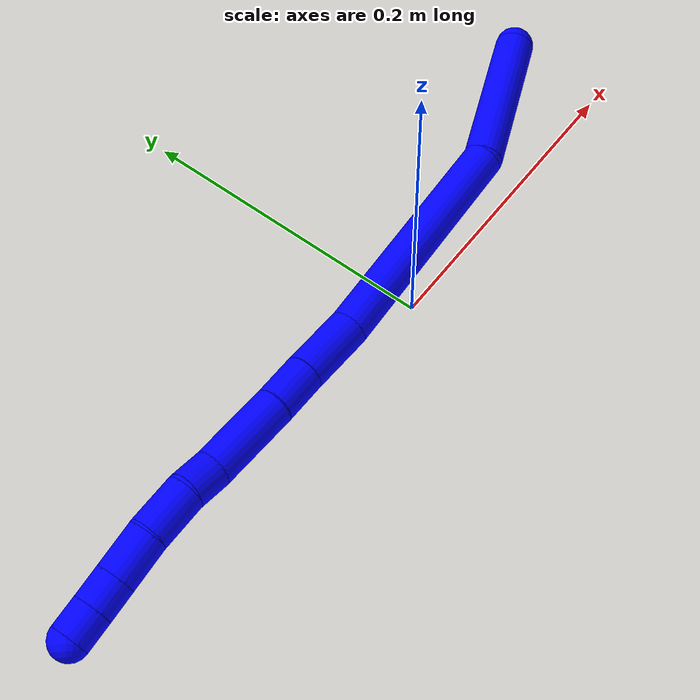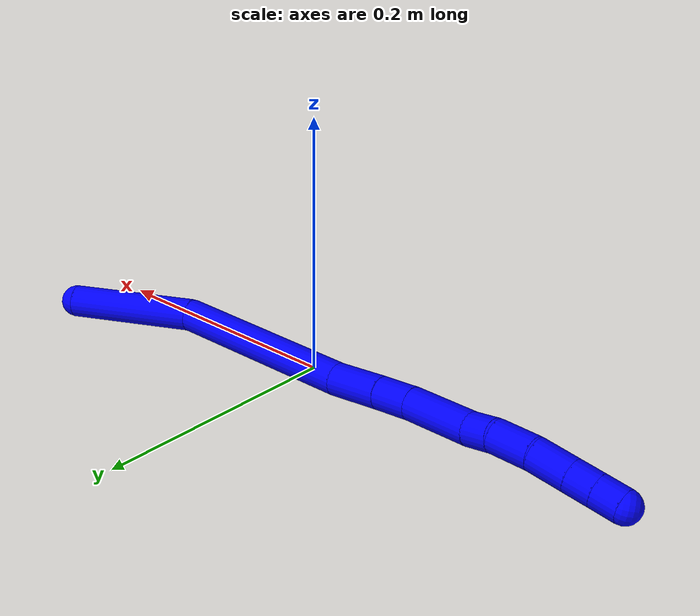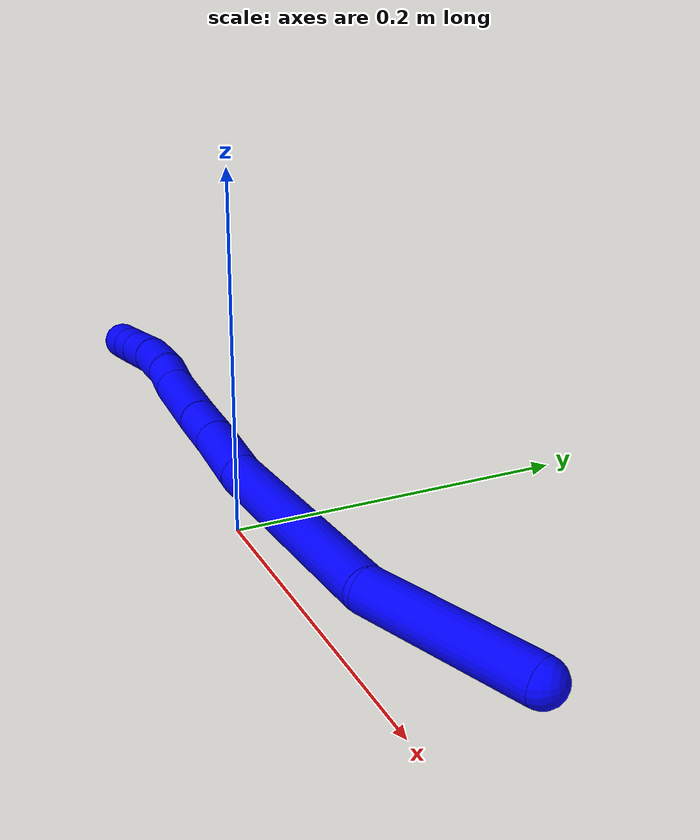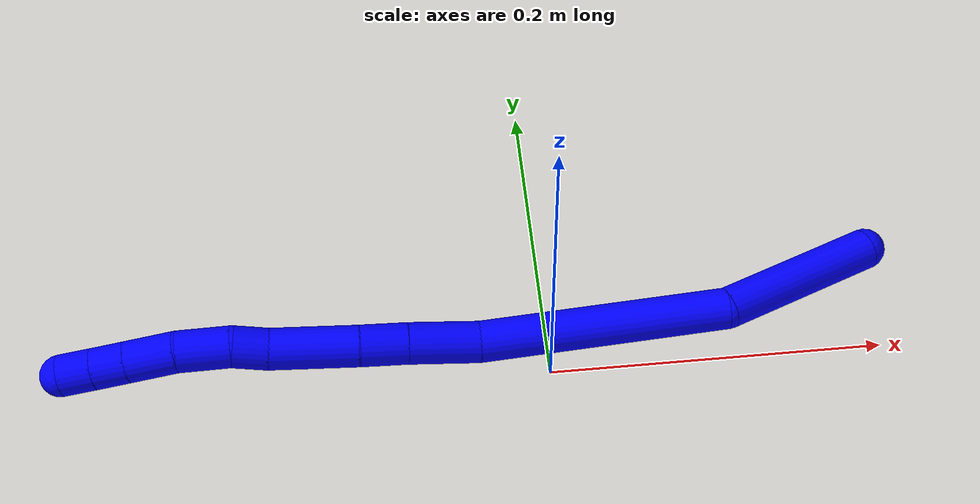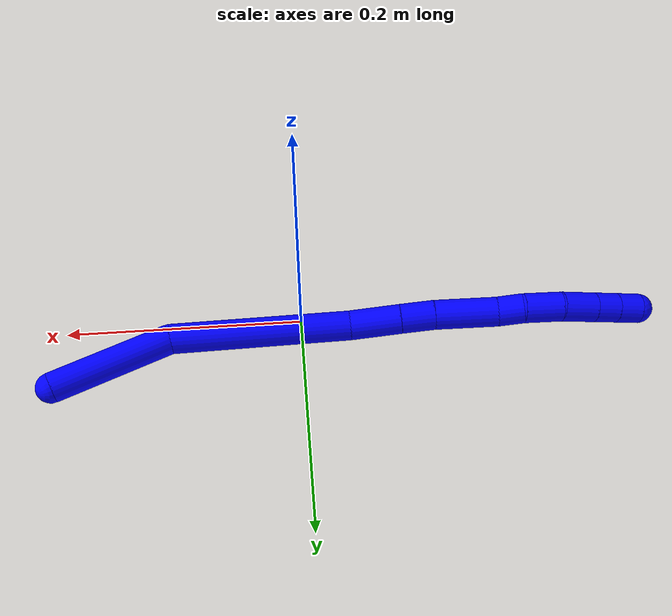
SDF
<sdf version="1.7">
 <world name="default">
  <plugin name="TubeGeneratorPlugin" filename="libtube_generator_plugin.so"/>
  <model name="photoneo_s_sensor">
   <static>1</static>
   <pose>0 0 2 1.57079 1.57079 3.14159</pose>
   <link name="link">
    <inertial><mass>0.1</mass></inertial>
    <sensor name="sensor" type="depth">
     <update_rate>30</update_rate>
     <camera>
      <horizontal_fov>1.22</horizontal_fov>
      <image><width>1920</width><height>1200</height><format>B8G8R8</format></image>
      <clip><near>0.1</near><far>4</far></clip>
      <depth_camera><output>points</output></depth_camera>
     </camera>
     <plugin name="camera_plugin" filename="libgazebo_ros_depth_camera.so">
      <baseline>0.2</baseline>
      <alwaysOn>1</alwaysOn>
      <updateRate>0.0</updateRate>
      <cameraName>camera_ir</cameraName>
      <imageTopicName>/camera/color/image_raw</imageTopicName>
      <cameraInfoTopicName>/camera/color/camera_info</cameraInfoTopicName>
      <depthImageTopicName>/camera/depth/image_raw</depthImageTopicName>
      <depthImageCameraInfoTopicName>/camera/depth/camera_info</depthImageCameraInfoTopicName>
      <pointCloudTopicName>/camera/depth/points</pointCloudTopicName>
      <frameName>fr_optical</frameName>
      <pointCloudCutoff>0.1</pointCloudCutoff>
      <pointCloudCutoffMax>2.0</pointCloudCutoffMax>
      <distortionK1>0</distortionK1>
      <distortionK2>0</distortionK2>
      <distortionK3>0</distortionK3>
      <distortionT1>0</distortionT1>
      <distortionT2>0</distortionT2>
      <CxPrime>0</CxPrime>
      <Cx>0</Cx>
      <Cy>0</Cy>
      <focalLength>0</focalLength>
      <hackBaseline>0</hackBaseline>
     </plugin>
    </sensor>
   </link>
  </model>
  <gravity>0 0 -9.8</gravity>
  <magnetic_field>6e-06 2.3e-05 -4.2e-05</magnetic_field>
  <atmosphere type="adiabatic"/>
  <physics name="default_physics" default="0" type="ode">
   <max_step_size>0.003</max_step_size>
   <real_time_factor>1</real_time_factor>
   <real_time_update_rate>1000</real_time_update_rate>
   <max_contacts>10000</max_contacts>
   <ode>
    <solver>
     <type>quick</type>
     <iters>100</iters>
     <sor>1.3</sor>
     <use_dynamic_moi_rescaling>0</use_dynamic_moi_rescaling>
    </solver>
    <constraints>
     <contact_max_correcting_vel>0</contact_max_correcting_vel>
     <contact_surface_layer>0.001</contact_surface_layer>
     <cfm>0</cfm>
     <erp>0.2</erp>
    </constraints>
   </ode>
  </physics>
  <scene><ambient>0.4 0.4 0.4 1</ambient><background>0.7 0.7 0.7 1</background><shadows>0</shadows></scene>
  <audio><device>default</device></audio>
  <spherical_coordinates>
   <surface_model>EARTH_WGS84</surface_model>
   <latitude_deg>0</latitude_deg>
   <longitude_deg>0</longitude_deg>
   <elevation>0</elevation>
   <heading_deg>0</heading_deg>
  </spherical_coordinates>
  <model name="bin">
   <static>1</static>
   <link name="bottom">
    <collision name="collision-bottom">
     <pose>0 0 -0.01 0 -0 0</pose>
     <geometry><box><size>0.8 0.6 0.02</size></box></geometry>
     <surface>
      <friction><ode><mu>100</mu><mu2>100</mu2></ode></friction>
      <contact><collide_bitmask>65535</collide_bitmask></contact>
     </surface>
    </collision>
   </link>
   <link name="west_wall">
    <collision name="collision-west_wall">
     <pose>-0.41 0 0.1 0 -0 0</pose>
     <geometry><box><size>0.02 0.6 0.2</size></box></geometry>
     <surface>
      <friction><ode><mu>100</mu><mu2>100</mu2></ode></friction>
      <contact><collide_bitmask>65535</collide_bitmask></contact>
     </surface>
    </collision>
   </link>
   <link name="east_wall">
    <collision name="collision-east_wall">
     <pose>0.41 0 0.1 0 -0 0</pose>
     <geometry><box><size>0.02 0.6 0.2</size></box></geometry>
     <surface>
      <friction><ode><mu>100</mu><mu2>100</mu2></ode></friction>
      <contact><collide_bitmask>65535</collide_bitmask></contact>
     </surface>
    </collision>
   </link>
   <link name="south_wall">
    <collision name="collision-south_wall">
     <pose>0 -0.31 0.1 0 -0 0</pose>
     <geometry><box><size>0.8 0.02 0.2</size></box></geometry>
     <surface>
      <friction><ode><mu>100</mu><mu2>100</mu2></ode></friction>
      <contact><collide_bitmask>65535</collide_bitmask></contact>
     </surface>
    </collision>
   </link>
   <link name="north_wall">
    <collision name="collision-north_wall">
     <pose>0 0.31 0.1 0 -0 0</pose>
     <geometry><box><size>0.8 0.02 0.2</size></box></geometry>
     <surface>
      <friction><ode><mu>100</mu><mu2>100</mu2></ode></friction>
      <contact><collide_bitmask>65535</collide_bitmask></contact>
     </surface>
    </collision>
   </link>
  </model>
  <model name="1">
   <static>0</static>
   <link name="1">
    <collision name="collision-cylinder-e_1_1_4">
     <pose>-0.017941 0.006266 0.046924 -0.132758 -0.362257 0.024347</pose>
     <geometry><cylinder><radius>0.0125</radius><length>0.101252</length></cylinder></geometry>
     <surface>
      <friction><ode><mu>1.16</mu><mu2>1.16</mu2><slip1>0</slip1><slip2>0</slip2></ode></friction>
      <contact><ode><kp>1e+06</kp><kd>1</kd><max_vel>0</max_vel><min_depth>0.001</min_depth></ode></contact>
     </surface>
    </collision>
    <visual name="visual-cylinder-e_1_1_4">
     <pose>-0.017941 0.006266 0.046924 -0.132758 -0.362257 0.024347</pose>
     <geometry><cylinder><radius>0.0125</radius><length>0.101252</length></cylinder></geometry>
     <material><ambient>0 0 1 1</ambient></material>
    </visual>
    <collision name="collision-cylinder-e_2_4_5">
     <pose>-0.081935 0.006479 0.152865 0.10221 -0.660094 -0.035042</pose>
     <geometry><cylinder><radius>0.0125</radius><length>0.150208</length></cylinder></geometry>
     <surface>
      <friction><ode><mu>1.16</mu><mu2>1.16</mu2><slip1>0</slip1><slip2>0</slip2></ode></friction>
      <contact><ode><kp>1e+06</kp><kd>1</kd><max_vel>0</max_vel><min_depth>0.001</min_depth></ode></contact>
     </surface>
    </collision>
    <visual name="visual-cylinder-e_2_4_5">
     <pose>-0.081935 0.006479 0.152865 0.10221 -0.660094 -0.035042</pose>
     <geometry><cylinder><radius>0.0125</radius><length>0.150208</length></cylinder></geometry>
     <material><ambient>0 0 1 1</ambient></material>
    </visual>
    <collision name="collision-cylinder-e_3_5_6">
     <pose>-0.142743 0.001025 0.227524 -0.038251 -0.755849 0.015187</pose>
     <geometry><cylinder><radius>0.0125</radius><length>0.043022</length></cylinder></geometry>
     <surface>
      <friction><ode><mu>1.16</mu><mu2>1.16</mu2><slip1>0</slip1><slip2>0</slip2></ode></friction>
      <contact><ode><kp>1e+06</kp><kd>1</kd><max_vel>0</max_vel><min_depth>0.001</min_depth></ode></contact>
     </surface>
    </collision>
    <visual name="visual-cylinder-e_3_5_6">
     <pose>-0.142743 0.001025 0.227524 -0.038251 -0.755849 0.015187</pose>
     <geometry><cylinder><radius>0.0125</radius><length>0.043022</length></cylinder></geometry>
     <material><ambient>0 0 1 1</ambient></material>
    </visual>
    <collision name="collision-cylinder-e_4_6_7">
     <pose>-0.166968 0.001667 0.253781 -0.004088 -0.728471 0.001559</pose>
     <geometry><cylinder><radius>0.0125</radius><length>0.028451</length></cylinder></geometry>
     <surface>
      <friction><ode><mu>1.16</mu><mu2>1.16</mu2><slip1>0</slip1><slip2>0</slip2></ode></friction>
      <contact><ode><kp>1e+06</kp><kd>1</kd><max_vel>0</max_vel><min_depth>0.001</min_depth></ode></contact>
     </surface>
    </collision>
    <visual name="visual-cylinder-e_4_6_7">
     <pose>-0.166968 0.001667 0.253781 -0.004088 -0.728471 0.001559</pose>
     <geometry><cylinder><radius>0.0125</radius><length>0.028451</length></cylinder></geometry>
     <material><ambient>0 0 1 1</ambient></material>
    </visual>
    <collision name="collision-cylinder-e_5_7_8">
     <pose>-0.194728 0.000179 0.283659 0.0793 -0.757919 -0.031592</pose>
     <geometry><cylinder><radius>0.0125</radius><length>0.053214</length></cylinder></geometry>
     <surface>
      <friction><ode><mu>1.16</mu><mu2>1.16</mu2><slip1>0</slip1><slip2>0</slip2></ode></friction>
      <contact><ode><kp>1e+06</kp><kd>1</kd><max_vel>0</max_vel><min_depth>0.001</min_depth></ode></contact>
     </surface>
    </collision>
    <visual name="visual-cylinder-e_5_7_8">
     <pose>-0.194728 0.000179 0.283659 0.0793 -0.757919 -0.031592</pose>
     <geometry><cylinder><radius>0.0125</radius><length>0.053214</length></cylinder></geometry>
     <material><ambient>0 0 1 1</ambient></material>
    </visual>
    <collision name="collision-cylinder-e_6_8_9">
     <pose>-0.221063 -0.000565 0.310183 -0.107881 -0.833634 0.047803</pose>
     <geometry><cylinder><radius>0.0125</radius><length>0.021731</length></cylinder></geometry>
     <surface>
      <friction><ode><mu>1.16</mu><mu2>1.16</mu2><slip1>0</slip1><slip2>0</slip2></ode></friction>
      <contact><ode><kp>1e+06</kp><kd>1</kd><max_vel>0</max_vel><min_depth>0.001</min_depth></ode></contact>
     </surface>
    </collision>
    <visual name="visual-cylinder-e_6_8_9">
     <pose>-0.221063 -0.000565 0.310183 -0.107881 -0.833634 0.047803</pose>
     <geometry><cylinder><radius>0.0125</radius><length>0.021731</length></cylinder></geometry>
     <material><ambient>0 0 1 1</ambient></material>
    </visual>
    <collision name="collision-cylinder-e_7_9_10">
     <pose>-0.239462 -0.001237 0.329615 0.119257 -0.701432 -0.043674</pose>
     <geometry><cylinder><radius>0.0125</radius><length>0.032092</length></cylinder></geometry>
     <surface>
      <friction><ode><mu>1.16</mu><mu2>1.16</mu2><slip1>0</slip1><slip2>0</slip2></ode></friction>
      <contact><ode><kp>1e+06</kp><kd>1</kd><max_vel>0</max_vel><min_depth>0.001</min_depth></ode></contact>
     </surface>
    </collision>
    <visual name="visual-cylinder-e_7_9_10">
     <pose>-0.239462 -0.001237 0.329615 0.119257 -0.701432 -0.043674</pose>
     <geometry><cylinder><radius>0.0125</radius><length>0.032092</length></cylinder></geometry>
     <material><ambient>0 0 1 1</ambient></material>
    </visual>
    <collision name="collision-cylinder-e_8_10_11">
     <pose>-0.258165 -0.005774 0.353578 0.25535 -0.600613 -0.079465</pose>
     <geometry><cylinder><radius>0.0125</radius><length>0.029545</length></cylinder></geometry>
     <surface>
      <friction><ode><mu>1.16</mu><mu2>1.16</mu2><slip1>0</slip1><slip2>0</slip2></ode></friction>
      <contact><ode><kp>1e+06</kp><kd>1</kd><max_vel>0</max_vel><min_depth>0.001</min_depth></ode></contact>
     </surface>
    </collision>
    <visual name="visual-cylinder-e_8_10_11">
     <pose>-0.258165 -0.005774 0.353578 0.25535 -0.600613 -0.079465</pose>
     <geometry><cylinder><radius>0.0125</radius><length>0.029545</length></cylinder></geometry>
     <material><ambient>0 0 1 1</ambient></material>
    </visual>
    <collision name="collision-cylinder-e_9_11_12">
     <pose>-0.272241 -0.010922 0.373449 0.250854 -0.601728 -0.078207</pose>
     <geometry><cylinder><radius>0.0125</radius><length>0.020234</length></cylinder></geometry>
     <surface>
      <friction><ode><mu>1.16</mu><mu2>1.16</mu2><slip1>0</slip1><slip2>0</slip2></ode></friction>
      <contact><ode><kp>1e+06</kp><kd>1</kd><max_vel>0</max_vel><min_depth>0.001</min_depth></ode></contact>
     </surface>
    </collision>
    <visual name="visual-cylinder-e_9_11_12">
     <pose>-0.272241 -0.010922 0.373449 0.250854 -0.601728 -0.078207</pose>
     <geometry><cylinder><radius>0.0125</radius><length>0.020234</length></cylinder></geometry>
     <material><ambient>0 0 1 1</ambient></material>
    </visual>
    <collision name="collision-cylinder-e_10_12_2">
     <pose>-0.28377 -0.015077 0.38956 0.253868 -0.610234 -0.080345</pose>
     <geometry><cylinder><radius>0.0125</radius><length>0.020251</length></cylinder></geometry>
     <surface>
      <friction><ode><mu>1.16</mu><mu2>1.16</mu2><slip1>0</slip1><slip2>0</slip2></ode></friction>
      <contact><ode><kp>1e+06</kp><kd>1</kd><max_vel>0</max_vel><min_depth>0.001</min_depth></ode></contact>
     </surface>
    </collision>
    <visual name="visual-cylinder-e_10_12_2">
     <pose>-0.28377 -0.015077 0.38956 0.253868 -0.610234 -0.080345</pose>
     <geometry><cylinder><radius>0.0125</radius><length>0.020251</length></cylinder></geometry>
     <material><ambient>0 0 1 1</ambient></material>
    </visual>
    <collision name="collision-sphere-2">
     <pose>-0.289573 -0.017161 0.397593 0 -0 0</pose>
     <geometry><sphere><radius>0.0125</radius></sphere></geometry>
     <surface>
      <friction><ode><mu>1.16</mu><mu2>1.16</mu2><slip1>0</slip1><slip2>0</slip2></ode></friction>
      <contact><ode><kp>1e+06</kp><kd>1</kd><max_vel>0</max_vel><min_depth>0.001</min_depth></ode></contact>
     </surface>
    </collision>
    <visual name="visual-sphere-2">
     <pose>-0.289573 -0.017161 0.397593 0 -0 0</pose>
     <geometry><sphere><radius>0.0125</radius></sphere></geometry>
     <material><ambient>0 0 1 1</ambient></material>
    </visual>
    <collision name="collision-sphere-12">
     <pose>-0.277968 -0.012993 0.381528 0 -0 0</pose>
     <geometry><sphere><radius>0.0125</radius></sphere></geometry>
     <surface>
      <friction><ode><mu>1.16</mu><mu2>1.16</mu2><slip1>0</slip1><slip2>0</slip2></ode></friction>
      <contact><ode><kp>1e+06</kp><kd>1</kd><max_vel>0</max_vel><min_depth>0.001</min_depth></ode></contact>
     </surface>
    </collision>
    <visual name="visual-sphere-12">
     <pose>-0.277968 -0.012993 0.381528 0 -0 0</pose>
     <geometry><sphere><radius>0.0125</radius></sphere></geometry>
     <material><ambient>0 0 1 1</ambient></material>
    </visual>
    <collision name="collision-sphere-11">
     <pose>-0.266514 -0.008852 0.36537 0 -0 0</pose>
     <geometry><sphere><radius>0.0125</radius></sphere></geometry>
     <surface>
      <friction><ode><mu>1.16</mu><mu2>1.16</mu2><slip1>0</slip1><slip2>0</slip2></ode></friction>
      <contact><ode><kp>1e+06</kp><kd>1</kd><max_vel>0</max_vel><min_depth>0.001</min_depth></ode></contact>
     </surface>
    </collision>
    <visual name="visual-sphere-11">
     <pose>-0.266514 -0.008852 0.36537 0 -0 0</pose>
     <geometry><sphere><radius>0.0125</radius></sphere></geometry>
     <material><ambient>0 0 1 1</ambient></material>
    </visual>
    <collision name="collision-sphere-10">
     <pose>-0.249816 -0.002695 0.341786 0 -0 0</pose>
     <geometry><sphere><radius>0.0125</radius></sphere></geometry>
     <surface>
      <friction><ode><mu>1.16</mu><mu2>1.16</mu2><slip1>0</slip1><slip2>0</slip2></ode></friction>
      <contact><ode><kp>1e+06</kp><kd>1</kd><max_vel>0</max_vel><min_depth>0.001</min_depth></ode></contact>
     </surface>
    </collision>
    <visual name="visual-sphere-10">
     <pose>-0.249816 -0.002695 0.341786 0 -0 0</pose>
     <geometry><sphere><radius>0.0125</radius></sphere></geometry>
     <material><ambient>0 0 1 1</ambient></material>
    </visual>
    <collision name="collision-sphere-9">
     <pose>-0.229107 0.000221 0.317445 0 -0 0</pose>
     <geometry><sphere><radius>0.0125</radius></sphere></geometry>
     <surface>
      <friction><ode><mu>1.16</mu><mu2>1.16</mu2><slip1>0</slip1><slip2>0</slip2></ode></friction>
      <contact><ode><kp>1e+06</kp><kd>1</kd><max_vel>0</max_vel><min_depth>0.001</min_depth></ode></contact>
     </surface>
    </collision>
    <visual name="visual-sphere-9">
     <pose>-0.229107 0.000221 0.317445 0 -0 0</pose>
     <geometry><sphere><radius>0.0125</radius></sphere></geometry>
     <material><ambient>0 0 1 1</ambient></material>
    </visual>
    <collision name="collision-sphere-4">
     <pose>-0.035882 0.012533 0.093847 0 -0 0</pose>
     <geometry><sphere><radius>0.0125</radius></sphere></geometry>
     <surface>
      <friction><ode><mu>1.16</mu><mu2>1.16</mu2><slip1>0</slip1><slip2>0</slip2></ode></friction>
      <contact><ode><kp>1e+06</kp><kd>1</kd><max_vel>0</max_vel><min_depth>0.001</min_depth></ode></contact>
     </surface>
    </collision>
    <visual name="visual-sphere-4">
     <pose>-0.035882 0.012533 0.093847 0 -0 0</pose>
     <geometry><sphere><radius>0.0125</radius></sphere></geometry>
     <material><ambient>0 0 1 1</ambient></material>
    </visual>
    <collision name="collision-sphere-1">
     <geometry><sphere><radius>0.0125</radius></sphere></geometry>
     <surface>
      <friction><ode><mu>1.16</mu><mu2>1.16</mu2><slip1>0</slip1><slip2>0</slip2></ode></friction>
      <contact><ode><kp>1e+06</kp><kd>1</kd><max_vel>0</max_vel><min_depth>0.001</min_depth></ode></contact>
     </surface>
    </collision>
    <visual name="visual-sphere-1">
     <geometry><sphere><radius>0.0125</radius></sphere></geometry>
     <material><ambient>0 0 1 1</ambient></material>
    </visual>
    <collision name="collision-sphere-8">
     <pose>-0.213018 -0.001351 0.302922 0 -0 0</pose>
     <geometry><sphere><radius>0.0125</radius></sphere></geometry>
     <surface>
      <friction><ode><mu>1.16</mu><mu2>1.16</mu2><slip1>0</slip1><slip2>0</slip2></ode></friction>
      <contact><ode><kp>1e+06</kp><kd>1</kd><max_vel>0</max_vel><min_depth>0.001</min_depth></ode></contact>
     </surface>
    </collision>
    <visual name="visual-sphere-8">
     <pose>-0.213018 -0.001351 0.302922 0 -0 0</pose>
     <geometry><sphere><radius>0.0125</radius></sphere></geometry>
     <material><ambient>0 0 1 1</ambient></material>
    </visual>
    <collision name="collision-sphere-5">
     <pose>-0.127988 0.000426 0.211883 0 -0 0</pose>
     <geometry><sphere><radius>0.0125</radius></sphere></geometry>
     <surface>
      <friction><ode><mu>1.16</mu><mu2>1.16</mu2><slip1>0</slip1><slip2>0</slip2></ode></friction>
      <contact><ode><kp>1e+06</kp><kd>1</kd><max_vel>0</max_vel><min_depth>0.001</min_depth></ode></contact>
     </surface>
    </collision>
    <visual name="visual-sphere-5">
     <pose>-0.127988 0.000426 0.211883 0 -0 0</pose>
     <geometry><sphere><radius>0.0125</radius></sphere></geometry>
     <material><ambient>0 0 1 1</ambient></material>
    </visual>
    <collision name="collision-sphere-6">
     <pose>-0.157497 0.001623 0.243166 0 -0 0</pose>
     <geometry><sphere><radius>0.0125</radius></sphere></geometry>
     <surface>
      <friction><ode><mu>1.16</mu><mu2>1.16</mu2><slip1>0</slip1><slip2>0</slip2></ode></friction>
      <contact><ode><kp>1e+06</kp><kd>1</kd><max_vel>0</max_vel><min_depth>0.001</min_depth></ode></contact>
     </surface>
    </collision>
    <visual name="visual-sphere-6">
     <pose>-0.157497 0.001623 0.243166 0 -0 0</pose>
     <geometry><sphere><radius>0.0125</radius></sphere></geometry>
     <material><ambient>0 0 1 1</ambient></material>
    </visual>
    <collision name="collision-sphere-7">
     <pose>-0.176438 0.00171 0.264396 0 -0 0</pose>
     <geometry><sphere><radius>0.0125</radius></sphere></geometry>
     <surface>
      <friction><ode><mu>1.16</mu><mu2>1.16</mu2><slip1>0</slip1><slip2>0</slip2></ode></friction>
      <contact><ode><kp>1e+06</kp><kd>1</kd><max_vel>0</max_vel><min_depth>0.001</min_depth></ode></contact>
     </surface>
    </collision>
    <visual name="visual-sphere-7">
     <pose>-0.176438 0.00171 0.264396 0 -0 0</pose>
     <geometry><sphere><radius>0.0125</radius></sphere></geometry>
     <material><ambient>0 0 1 1</ambient></material>
    </visual>
    <inertial>
     <pose>-0.133498 0.00192 0.206053 0 -0 0</pose>
     <mass>0.5</mass>
     <inertia>
      <ixx>0.000311</ixx>
      <ixy>0</ixy>
      <ixz>0</ixz>
      <iyy>0.000407</iyy>
      <iyz>0</iyz>
      <izz>0.000279</izz>
     </inertia>
    </inertial>
   </link>
   <pose>0.202779 0.063655 0.012214 1.78712 0.339565 -0.804238</pose>
  </model>
 </world>
</sdf>
